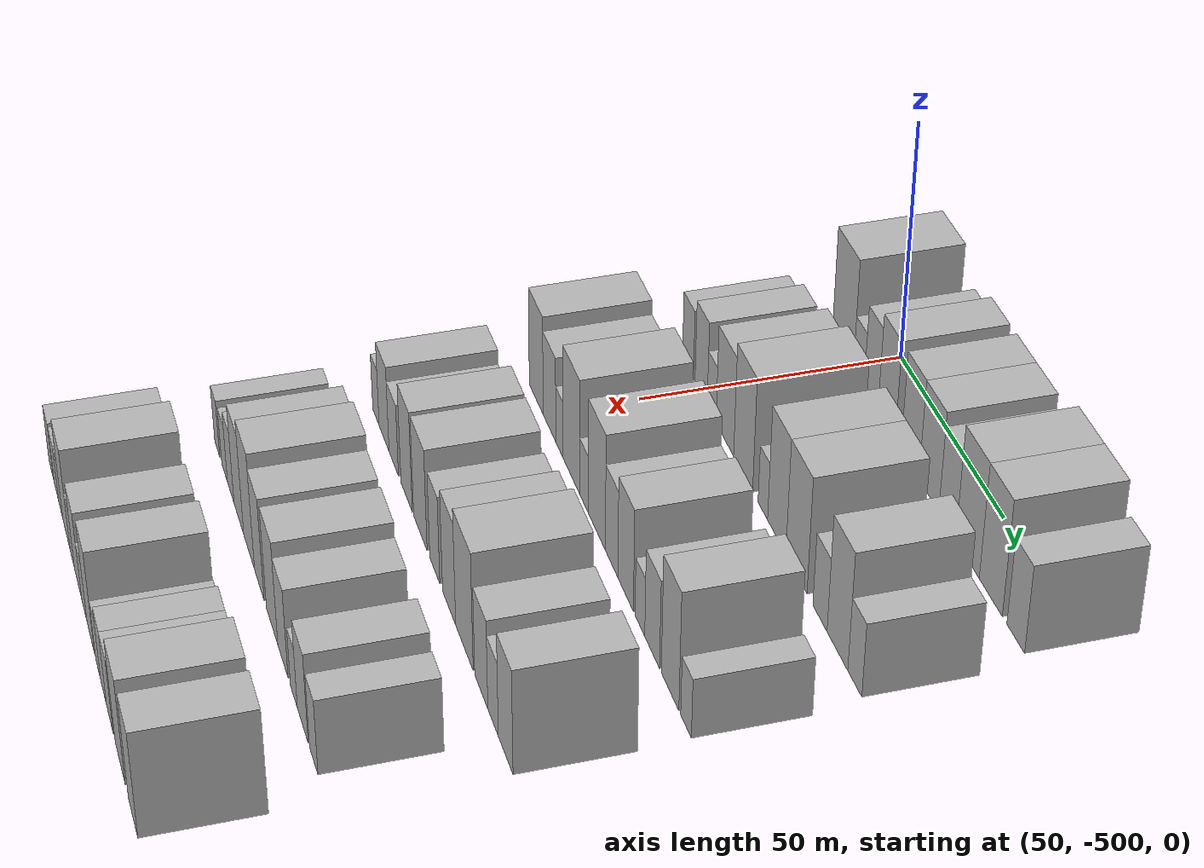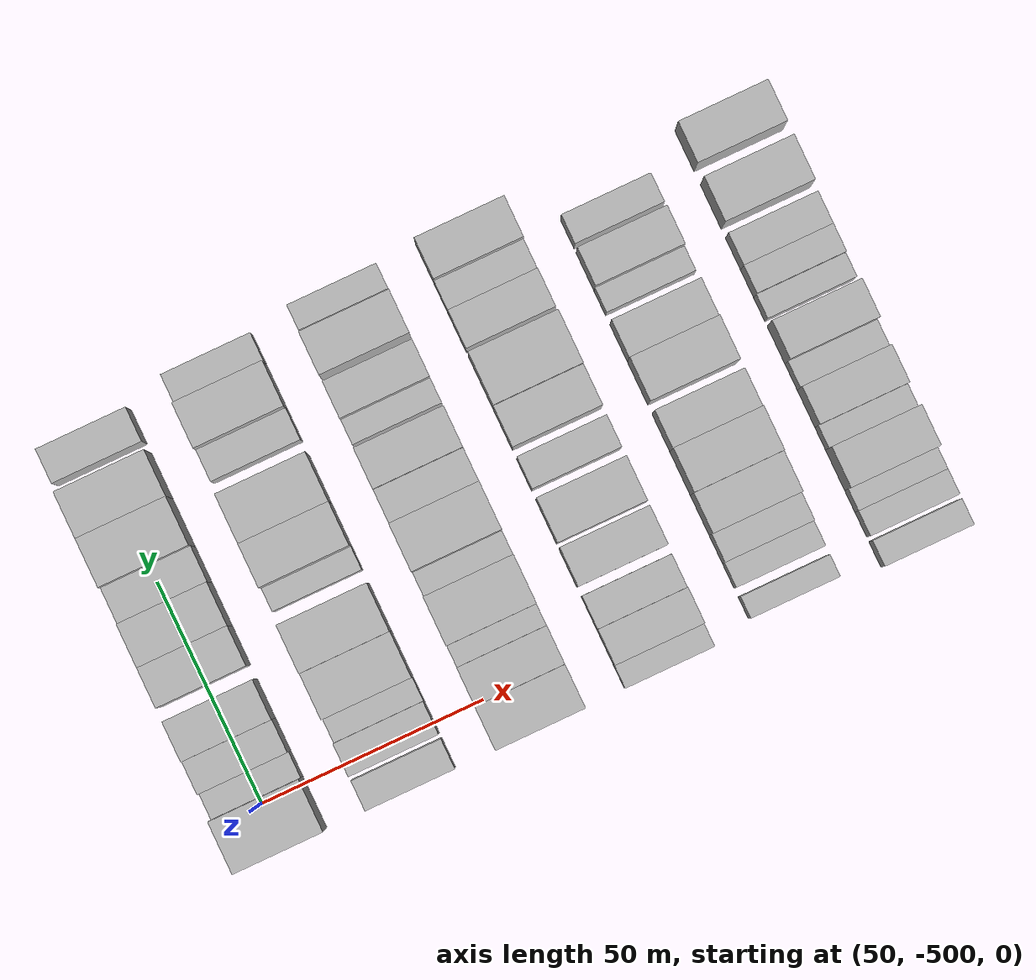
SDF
<sdf version="1.6">
 <world name="default">
  <model name="building_1">
   <static>1</static>
   <pose>50.0000 -504.2040 0 0.000000 0.000000 0.000000</pose>
   <link name="link">
    <pose>0 0 12.00 0 0 0</pose>
    <collision name="collision"><geometry><box><size>20.0000 11.5920 24.0000</size></box></geometry></collision>
    <visual name="visual">
     <cast_shadows>0</cast_shadows>
     <geometry><box><size>20.0000 11.5920 24.0000</size></box></geometry>
     <material>
      <script>
       <uri>model://HANNAS_wall/materials/scripts</uri>
       <uri>model://HANNAS_wall/materials/textures</uri>
       <name>vrc/HANNAS_wall</name>
      </script>
     </material>
    </visual>
   </link>
  </model>
  <model name="building_2">
   <static>1</static>
   <pose>50.0000 -495.5238 0 0.000000 0.000000 0.000000</pose>
   <link name="link">
    <pose>0 0 6.00 0 0 0</pose>
    <collision name="collision"><geometry><box><size>20.0000 5.7683 12.0000</size></box></geometry></collision>
    <visual name="visual">
     <cast_shadows>0</cast_shadows>
     <geometry><box><size>20.0000 5.7683 12.0000</size></box></geometry>
     <material>
      <script>
       <uri>model://HANNAS_wall/materials/scripts</uri>
       <uri>model://HANNAS_wall/materials/textures</uri>
       <name>vrc/HANNAS_wall</name>
      </script>
     </material>
    </visual>
   </link>
  </model>
  <model name="building_3">
   <static>1</static>
   <pose>50.0000 -488.9735 0 0.000000 0.000000 0.000000</pose>
   <link name="link">
    <pose>0 0 9.00 0 0 0</pose>
    <collision name="collision"><geometry><box><size>20.0000 7.3324 18.0000</size></box></geometry></collision>
    <visual name="visual">
     <cast_shadows>0</cast_shadows>
     <geometry><box><size>20.0000 7.3324 18.0000</size></box></geometry>
     <material>
      <script>
       <uri>model://HANNAS_wall/materials/scripts</uri>
       <uri>model://HANNAS_wall/materials/textures</uri>
       <name>vrc/HANNAS_wall</name>
      </script>
     </material>
    </visual>
   </link>
  </model>
  <model name="building_4">
   <static>1</static>
   <pose>50.0000 -480.8503 0 0.000000 0.000000 0.000000</pose>
   <link name="link">
    <pose>0 0 10.50 0 0 0</pose>
    <collision name="collision"><geometry><box><size>20.0000 8.9139 21.0000</size></box></geometry></collision>
    <visual name="visual">
     <cast_shadows>0</cast_shadows>
     <geometry><box><size>20.0000 8.9139 21.0000</size></box></geometry>
     <material>
      <script>
       <uri>model://HANNAS_wall/materials/scripts</uri>
       <uri>model://HANNAS_wall/materials/textures</uri>
       <name>vrc/HANNAS_wall</name>
      </script>
     </material>
    </visual>
   </link>
  </model>
  <model name="building_5">
   <static>1</static>
   <pose>50.0000 -468.9195 0 0.000000 0.000000 0.000000</pose>
   <link name="link">
    <pose>0 0 10.50 0 0 0</pose>
    <collision name="collision"><geometry><box><size>20.0000 8.9476 21.0000</size></box></geometry></collision>
    <visual name="visual">
     <cast_shadows>0</cast_shadows>
     <geometry><box><size>20.0000 8.9476 21.0000</size></box></geometry>
     <material>
      <script>
       <uri>model://HANNAS_wall/materials/scripts</uri>
       <uri>model://HANNAS_wall/materials/textures</uri>
       <name>vrc/HANNAS_wall</name>
      </script>
     </material>
    </visual>
   </link>
  </model>
  <model name="building_6">
   <static>1</static>
   <pose>50.0000 -459.5976 0 0.000000 0.000000 0.000000</pose>
   <link name="link">
    <pose>0 0 10.50 0 0 0</pose>
    <collision name="collision"><geometry><box><size>20.0000 9.6962 21.0000</size></box></geometry></collision>
    <visual name="visual">
     <cast_shadows>0</cast_shadows>
     <geometry><box><size>20.0000 9.6962 21.0000</size></box></geometry>
     <material>
      <script>
       <uri>model://HANNAS_wall/materials/scripts</uri>
       <uri>model://HANNAS_wall/materials/textures</uri>
       <name>vrc/HANNAS_wall</name>
      </script>
     </material>
    </visual>
   </link>
  </model>
  <model name="building_7">
   <static>1</static>
   <pose>50.0000 -450.7209 0 0.000000 0.000000 0.000000</pose>
   <link name="link">
    <pose>0 0 9.00 0 0 0</pose>
    <collision name="collision"><geometry><box><size>20.0000 8.0573 18.0000</size></box></geometry></collision>
    <visual name="visual">
     <cast_shadows>0</cast_shadows>
     <geometry><box><size>20.0000 8.0573 18.0000</size></box></geometry>
     <material>
      <script>
       <uri>model://HANNAS_wall/materials/scripts</uri>
       <uri>model://HANNAS_wall/materials/textures</uri>
       <name>vrc/HANNAS_wall</name>
      </script>
     </material>
    </visual>
   </link>
  </model>
  <model name="building_8">
   <static>1</static>
   <pose>50.0000 -441.2656 0 0.000000 0.000000 0.000000</pose>
   <link name="link">
    <pose>0 0 12.00 0 0 0</pose>
    <collision name="collision"><geometry><box><size>20.0000 10.8533 24.0000</size></box></geometry></collision>
    <visual name="visual">
     <cast_shadows>0</cast_shadows>
     <geometry><box><size>20.0000 10.8533 24.0000</size></box></geometry>
     <material>
      <script>
       <uri>model://HANNAS_wall/materials/scripts</uri>
       <uri>model://HANNAS_wall/materials/textures</uri>
       <name>vrc/HANNAS_wall</name>
      </script>
     </material>
    </visual>
   </link>
  </model>
  <model name="building_9">
   <static>1</static>
   <pose>50.0000 -430.6764 0 0.000000 0.000000 0.000000</pose>
   <link name="link">
    <pose>0 0 12.00 0 0 0</pose>
    <collision name="collision"><geometry><box><size>20.0000 10.3251 24.0000</size></box></geometry></collision>
    <visual name="visual">
     <cast_shadows>0</cast_shadows>
     <geometry><box><size>20.0000 10.3251 24.0000</size></box></geometry>
     <material>
      <script>
       <uri>model://HANNAS_wall/materials/scripts</uri>
       <uri>model://HANNAS_wall/materials/textures</uri>
       <name>vrc/HANNAS_wall</name>
      </script>
     </material>
    </visual>
   </link>
  </model>
  <model name="building_10">
   <static>1</static>
   <pose>50.0000 -419.6778 0 0.000000 0.000000 0.000000</pose>
   <link name="link">
    <pose>0 0 9.00 0 0 0</pose>
    <collision name="collision"><geometry><box><size>20.0000 7.6722 18.0000</size></box></geometry></collision>
    <visual name="visual">
     <cast_shadows>0</cast_shadows>
     <geometry><box><size>20.0000 7.6722 18.0000</size></box></geometry>
     <material>
      <script>
       <uri>model://HANNAS_wall/materials/scripts</uri>
       <uri>model://HANNAS_wall/materials/textures</uri>
       <name>vrc/HANNAS_wall</name>
      </script>
     </material>
    </visual>
   </link>
  </model>
  <model name="building_113">
   <static>1</static>
   <pose>79.0000 -506.6439 0 0.000000 0.000000 0.000000</pose>
   <link name="link">
    <pose>0 0 7.50 0 0 0</pose>
    <collision name="collision"><geometry><box><size>20.0000 6.7122 15.0000</size></box></geometry></collision>
    <visual name="visual">
     <cast_shadows>0</cast_shadows>
     <geometry><box><size>20.0000 6.7122 15.0000</size></box></geometry>
     <material>
      <script>
       <uri>model://HANNAS_wall/materials/scripts</uri>
       <uri>model://HANNAS_wall/materials/textures</uri>
       <name>vrc/HANNAS_wall</name>
      </script>
     </material>
    </visual>
   </link>
  </model>
  <model name="building_114">
   <static>1</static>
   <pose>79.0000 -498.6061 0 0.000000 0.000000 0.000000</pose>
   <link name="link">
    <pose>0 0 9.00 0 0 0</pose>
    <collision name="collision"><geometry><box><size>20.0000 7.3633 18.0000</size></box></geometry></collision>
    <visual name="visual">
     <cast_shadows>0</cast_shadows>
     <geometry><box><size>20.0000 7.3633 18.0000</size></box></geometry>
     <material>
      <script>
       <uri>model://HANNAS_wall/materials/scripts</uri>
       <uri>model://HANNAS_wall/materials/textures</uri>
       <name>vrc/HANNAS_wall</name>
      </script>
     </material>
    </visual>
   </link>
  </model>
  <model name="building_115">
   <static>1</static>
   <pose>79.0000 -492.2765 0 0.000000 0.000000 0.000000</pose>
   <link name="link">
    <pose>0 0 6.00 0 0 0</pose>
    <collision name="collision"><geometry><box><size>20.0000 5.2959 12.0000</size></box></geometry></collision>
    <visual name="visual">
     <cast_shadows>0</cast_shadows>
     <geometry><box><size>20.0000 5.2959 12.0000</size></box></geometry>
     <material>
      <script>
       <uri>model://HANNAS_wall/materials/scripts</uri>
       <uri>model://HANNAS_wall/materials/textures</uri>
       <name>vrc/HANNAS_wall</name>
      </script>
     </material>
    </visual>
   </link>
  </model>
  <model name="building_116">
   <static>1</static>
   <pose>79.0000 -484.5029 0 0.000000 0.000000 0.000000</pose>
   <link name="link">
    <pose>0 0 10.50 0 0 0</pose>
    <collision name="collision"><geometry><box><size>20.0000 10.2514 21.0000</size></box></geometry></collision>
    <visual name="visual">
     <cast_shadows>0</cast_shadows>
     <geometry><box><size>20.0000 10.2514 21.0000</size></box></geometry>
     <material>
      <script>
       <uri>model://HANNAS_wall/materials/scripts</uri>
       <uri>model://HANNAS_wall/materials/textures</uri>
       <name>vrc/HANNAS_wall</name>
      </script>
     </material>
    </visual>
   </link>
  </model>
  <model name="building_117">
   <static>1</static>
   <pose>79.0000 -473.9984 0 0.000000 0.000000 0.000000</pose>
   <link name="link">
    <pose>0 0 12.00 0 0 0</pose>
    <collision name="collision"><geometry><box><size>20.0000 10.7576 24.0000</size></box></geometry></collision>
    <visual name="visual">
     <cast_shadows>0</cast_shadows>
     <geometry><box><size>20.0000 10.7576 24.0000</size></box></geometry>
     <material>
      <script>
       <uri>model://HANNAS_wall/materials/scripts</uri>
       <uri>model://HANNAS_wall/materials/textures</uri>
       <name>vrc/HANNAS_wall</name>
      </script>
     </material>
    </visual>
   </link>
  </model>
  <model name="building_118">
   <static>1</static>
   <pose>79.0000 -463.0004 0 0.000000 0.000000 0.000000</pose>
   <link name="link">
    <pose>0 0 6.00 0 0 0</pose>
    <collision name="collision"><geometry><box><size>20.0000 5.2384 12.0000</size></box></geometry></collision>
    <visual name="visual">
     <cast_shadows>0</cast_shadows>
     <geometry><box><size>20.0000 5.2384 12.0000</size></box></geometry>
     <material>
      <script>
       <uri>model://HANNAS_wall/materials/scripts</uri>
       <uri>model://HANNAS_wall/materials/textures</uri>
       <name>vrc/HANNAS_wall</name>
      </script>
     </material>
    </visual>
   </link>
  </model>
  <model name="building_119">
   <static>1</static>
   <pose>79.0000 -455.4899 0 0.000000 0.000000 0.000000</pose>
   <link name="link">
    <pose>0 0 12.00 0 0 0</pose>
    <collision name="collision"><geometry><box><size>20.0000 9.7826 24.0000</size></box></geometry></collision>
    <visual name="visual">
     <cast_shadows>0</cast_shadows>
     <geometry><box><size>20.0000 9.7826 24.0000</size></box></geometry>
     <material>
      <script>
       <uri>model://HANNAS_wall/materials/scripts</uri>
       <uri>model://HANNAS_wall/materials/textures</uri>
       <name>vrc/HANNAS_wall</name>
      </script>
     </material>
    </visual>
   </link>
  </model>
  <model name="building_120">
   <static>1</static>
   <pose>79.0000 -445.1103 0 0.000000 0.000000 0.000000</pose>
   <link name="link">
    <pose>0 0 12.00 0 0 0</pose>
    <collision name="collision"><geometry><box><size>20.0000 10.9765 24.0000</size></box></geometry></collision>
    <visual name="visual">
     <cast_shadows>0</cast_shadows>
     <geometry><box><size>20.0000 10.9765 24.0000</size></box></geometry>
     <material>
      <script>
       <uri>model://HANNAS_wall/materials/scripts</uri>
       <uri>model://HANNAS_wall/materials/textures</uri>
       <name>vrc/HANNAS_wall</name>
      </script>
     </material>
    </visual>
   </link>
  </model>
  <model name="building_121">
   <static>1</static>
   <pose>79.0000 -433.0777 0 0.000000 0.000000 0.000000</pose>
   <link name="link">
    <pose>0 0 7.50 0 0 0</pose>
    <collision name="collision"><geometry><box><size>20.0000 7.0888 15.0000</size></box></geometry></collision>
    <visual name="visual">
     <cast_shadows>0</cast_shadows>
     <geometry><box><size>20.0000 7.0888 15.0000</size></box></geometry>
     <material>
      <script>
       <uri>model://HANNAS_wall/materials/scripts</uri>
       <uri>model://HANNAS_wall/materials/textures</uri>
       <name>vrc/HANNAS_wall</name>
      </script>
     </material>
    </visual>
   </link>
  </model>
  <model name="building_122">
   <static>1</static>
   <pose>79.0000 -424.4670 0 0.000000 0.000000 0.000000</pose>
   <link name="link">
    <pose>0 0 12.00 0 0 0</pose>
    <collision name="collision"><geometry><box><size>20.0000 10.1327 24.0000</size></box></geometry></collision>
    <visual name="visual">
     <cast_shadows>0</cast_shadows>
     <geometry><box><size>20.0000 10.1327 24.0000</size></box></geometry>
     <material>
      <script>
       <uri>model://HANNAS_wall/materials/scripts</uri>
       <uri>model://HANNAS_wall/materials/textures</uri>
       <name>vrc/HANNAS_wall</name>
      </script>
     </material>
    </visual>
   </link>
  </model>
  <model name="building_123">
   <static>1</static>
   <pose>79.0000 -416.0557 0 0.000000 0.000000 0.000000</pose>
   <link name="link">
    <pose>0 0 7.50 0 0 0</pose>
    <collision name="collision"><geometry><box><size>20.0000 6.6900 15.0000</size></box></geometry></collision>
    <visual name="visual">
     <cast_shadows>0</cast_shadows>
     <geometry><box><size>20.0000 6.6900 15.0000</size></box></geometry>
     <material>
      <script>
       <uri>model://HANNAS_wall/materials/scripts</uri>
       <uri>model://HANNAS_wall/materials/textures</uri>
       <name>vrc/HANNAS_wall</name>
      </script>
     </material>
    </visual>
   </link>
  </model>
  <model name="building_226">
   <static>1</static>
   <pose>108.0000 -505.1451 0 0.000000 0.000000 0.000000</pose>
   <link name="link">
    <pose>0 0 10.50 0 0 0</pose>
    <collision name="collision"><geometry><box><size>20.0000 9.7098 21.0000</size></box></geometry></collision>
    <visual name="visual">
     <cast_shadows>0</cast_shadows>
     <geometry><box><size>20.0000 9.7098 21.0000</size></box></geometry>
     <material>
      <script>
       <uri>model://HANNAS_wall/materials/scripts</uri>
       <uri>model://HANNAS_wall/materials/textures</uri>
       <name>vrc/HANNAS_wall</name>
      </script>
     </material>
    </visual>
   </link>
  </model>
  <model name="building_227">
   <static>1</static>
   <pose>108.0000 -495.9892 0 0.000000 0.000000 0.000000</pose>
   <link name="link">
    <pose>0 0 9.00 0 0 0</pose>
    <collision name="collision"><geometry><box><size>20.0000 8.6020 18.0000</size></box></geometry></collision>
    <visual name="visual">
     <cast_shadows>0</cast_shadows>
     <geometry><box><size>20.0000 8.6020 18.0000</size></box></geometry>
     <material>
      <script>
       <uri>model://HANNAS_wall/materials/scripts</uri>
       <uri>model://HANNAS_wall/materials/textures</uri>
       <name>vrc/HANNAS_wall</name>
      </script>
     </material>
    </visual>
   </link>
  </model>
  <model name="building_228">
   <static>1</static>
   <pose>108.0000 -489.2706 0 0.000000 0.000000 0.000000</pose>
   <link name="link">
    <pose>0 0 6.00 0 0 0</pose>
    <collision name="collision"><geometry><box><size>20.0000 4.8351 12.0000</size></box></geometry></collision>
    <visual name="visual">
     <cast_shadows>0</cast_shadows>
     <geometry><box><size>20.0000 4.8351 12.0000</size></box></geometry>
     <material>
      <script>
       <uri>model://HANNAS_wall/materials/scripts</uri>
       <uri>model://HANNAS_wall/materials/textures</uri>
       <name>vrc/HANNAS_wall</name>
      </script>
     </material>
    </visual>
   </link>
  </model>
  <model name="building_229">
   <static>1</static>
   <pose>108.0000 -481.3991 0 0.000000 0.000000 0.000000</pose>
   <link name="link">
    <pose>0 0 12.00 0 0 0</pose>
    <collision name="collision"><geometry><box><size>20.0000 10.9078 24.0000</size></box></geometry></collision>
    <visual name="visual">
     <cast_shadows>0</cast_shadows>
     <geometry><box><size>20.0000 10.9078 24.0000</size></box></geometry>
     <material>
      <script>
       <uri>model://HANNAS_wall/materials/scripts</uri>
       <uri>model://HANNAS_wall/materials/textures</uri>
       <name>vrc/HANNAS_wall</name>
      </script>
     </material>
    </visual>
   </link>
  </model>
  <model name="building_230">
   <static>1</static>
   <pose>108.0000 -473.2100 0 0.000000 0.000000 0.000000</pose>
   <link name="link">
    <pose>0 0 6.00 0 0 0</pose>
    <collision name="collision"><geometry><box><size>20.0000 5.4704 12.0000</size></box></geometry></collision>
    <visual name="visual">
     <cast_shadows>0</cast_shadows>
     <geometry><box><size>20.0000 5.4704 12.0000</size></box></geometry>
     <material>
      <script>
       <uri>model://HANNAS_wall/materials/scripts</uri>
       <uri>model://HANNAS_wall/materials/textures</uri>
       <name>vrc/HANNAS_wall</name>
      </script>
     </material>
    </visual>
   </link>
  </model>
  <model name="building_231">
   <static>1</static>
   <pose>108.0000 -465.1127 0 0.000000 0.000000 0.000000</pose>
   <link name="link">
    <pose>0 0 12.00 0 0 0</pose>
    <collision name="collision"><geometry><box><size>20.0000 10.7243 24.0000</size></box></geometry></collision>
    <visual name="visual">
     <cast_shadows>0</cast_shadows>
     <geometry><box><size>20.0000 10.7243 24.0000</size></box></geometry>
     <material>
      <script>
       <uri>model://HANNAS_wall/materials/scripts</uri>
       <uri>model://HANNAS_wall/materials/textures</uri>
       <name>vrc/HANNAS_wall</name>
      </script>
     </material>
    </visual>
   </link>
  </model>
  <model name="building_232">
   <static>1</static>
   <pose>108.0000 -455.9455 0 0.000000 0.000000 0.000000</pose>
   <link name="link">
    <pose>0 0 9.00 0 0 0</pose>
    <collision name="collision"><geometry><box><size>20.0000 7.6100 18.0000</size></box></geometry></collision>
    <visual name="visual">
     <cast_shadows>0</cast_shadows>
     <geometry><box><size>20.0000 7.6100 18.0000</size></box></geometry>
     <material>
      <script>
       <uri>model://HANNAS_wall/materials/scripts</uri>
       <uri>model://HANNAS_wall/materials/textures</uri>
       <name>vrc/HANNAS_wall</name>
      </script>
     </material>
    </visual>
   </link>
  </model>
  <model name="building_233">
   <static>1</static>
   <pose>108.0000 -447.5242 0 0.000000 0.000000 0.000000</pose>
   <link name="link">
    <pose>0 0 10.50 0 0 0</pose>
    <collision name="collision"><geometry><box><size>20.0000 9.2328 21.0000</size></box></geometry></collision>
    <visual name="visual">
     <cast_shadows>0</cast_shadows>
     <geometry><box><size>20.0000 9.2328 21.0000</size></box></geometry>
     <material>
      <script>
       <uri>model://HANNAS_wall/materials/scripts</uri>
       <uri>model://HANNAS_wall/materials/textures</uri>
       <name>vrc/HANNAS_wall</name>
      </script>
     </material>
    </visual>
   </link>
  </model>
  <model name="building_234">
   <static>1</static>
   <pose>108.0000 -439.1036 0 0.000000 0.000000 0.000000</pose>
   <link name="link">
    <pose>0 0 6.00 0 0 0</pose>
    <collision name="collision"><geometry><box><size>20.0000 5.6084 12.0000</size></box></geometry></collision>
    <visual name="visual">
     <cast_shadows>0</cast_shadows>
     <geometry><box><size>20.0000 5.6084 12.0000</size></box></geometry>
     <material>
      <script>
       <uri>model://HANNAS_wall/materials/scripts</uri>
       <uri>model://HANNAS_wall/materials/textures</uri>
       <name>vrc/HANNAS_wall</name>
      </script>
     </material>
    </visual>
   </link>
  </model>
  <model name="building_235">
   <static>1</static>
   <pose>108.0000 -432.1223 0 0.000000 0.000000 0.000000</pose>
   <link name="link">
    <pose>0 0 9.00 0 0 0</pose>
    <collision name="collision"><geometry><box><size>20.0000 8.3540 18.0000</size></box></geometry></collision>
    <visual name="visual">
     <cast_shadows>0</cast_shadows>
     <geometry><box><size>20.0000 8.3540 18.0000</size></box></geometry>
     <material>
      <script>
       <uri>model://HANNAS_wall/materials/scripts</uri>
       <uri>model://HANNAS_wall/materials/textures</uri>
       <name>vrc/HANNAS_wall</name>
      </script>
     </material>
    </visual>
   </link>
  </model>
  <model name="building_236">
   <static>1</static>
   <pose>108.0000 -422.1248 0 0.000000 0.000000 0.000000</pose>
   <link name="link">
    <pose>0 0 12.00 0 0 0</pose>
    <collision name="collision"><geometry><box><size>20.0000 9.6410 24.0000</size></box></geometry></collision>
    <visual name="visual">
     <cast_shadows>0</cast_shadows>
     <geometry><box><size>20.0000 9.6410 24.0000</size></box></geometry>
     <material>
      <script>
       <uri>model://HANNAS_wall/materials/scripts</uri>
       <uri>model://HANNAS_wall/materials/textures</uri>
       <name>vrc/HANNAS_wall</name>
      </script>
     </material>
    </visual>
   </link>
  </model>
  <model name="building_237">
   <static>1</static>
   <pose>108.0000 -413.4502 0 0.000000 0.000000 0.000000</pose>
   <link name="link">
    <pose>0 0 6.00 0 0 0</pose>
    <collision name="collision"><geometry><box><size>20.0000 5.7081 12.0000</size></box></geometry></collision>
    <visual name="visual">
     <cast_shadows>0</cast_shadows>
     <geometry><box><size>20.0000 5.7081 12.0000</size></box></geometry>
     <material>
      <script>
       <uri>model://HANNAS_wall/materials/scripts</uri>
       <uri>model://HANNAS_wall/materials/textures</uri>
       <name>vrc/HANNAS_wall</name>
      </script>
     </material>
    </visual>
   </link>
  </model>
  <model name="building_334">
   <static>1</static>
   <pose>137.0000 -507.4073 0 0.000000 0.000000 0.000000</pose>
   <link name="link">
    <pose>0 0 6.00 0 0 0</pose>
    <collision name="collision"><geometry><box><size>20.0000 5.1854 12.0000</size></box></geometry></collision>
    <visual name="visual">
     <cast_shadows>0</cast_shadows>
     <geometry><box><size>20.0000 5.1854 12.0000</size></box></geometry>
     <material>
      <script>
       <uri>model://HANNAS_wall/materials/scripts</uri>
       <uri>model://HANNAS_wall/materials/textures</uri>
       <name>vrc/HANNAS_wall</name>
      </script>
     </material>
    </visual>
   </link>
  </model>
  <model name="building_335">
   <static>1</static>
   <pose>137.0000 -500.8040 0 0.000000 0.000000 0.000000</pose>
   <link name="link">
    <pose>0 0 9.00 0 0 0</pose>
    <collision name="collision"><geometry><box><size>20.0000 8.0212 18.0000</size></box></geometry></collision>
    <visual name="visual">
     <cast_shadows>0</cast_shadows>
     <geometry><box><size>20.0000 8.0212 18.0000</size></box></geometry>
     <material>
      <script>
       <uri>model://HANNAS_wall/materials/scripts</uri>
       <uri>model://HANNAS_wall/materials/textures</uri>
       <name>vrc/HANNAS_wall</name>
      </script>
     </material>
    </visual>
   </link>
  </model>
  <model name="building_336">
   <static>1</static>
   <pose>137.0000 -493.0777 0 0.000000 0.000000 0.000000</pose>
   <link name="link">
    <pose>0 0 7.50 0 0 0</pose>
    <collision name="collision"><geometry><box><size>20.0000 7.4316 15.0000</size></box></geometry></collision>
    <visual name="visual">
     <cast_shadows>0</cast_shadows>
     <geometry><box><size>20.0000 7.4316 15.0000</size></box></geometry>
     <material>
      <script>
       <uri>model://HANNAS_wall/materials/scripts</uri>
       <uri>model://HANNAS_wall/materials/textures</uri>
       <name>vrc/HANNAS_wall</name>
      </script>
     </material>
    </visual>
   </link>
  </model>
  <model name="building_337">
   <static>1</static>
   <pose>137.0000 -482.9922 0 0.000000 0.000000 0.000000</pose>
   <link name="link">
    <pose>0 0 10.50 0 0 0</pose>
    <collision name="collision"><geometry><box><size>20.0000 8.7392 21.0000</size></box></geometry></collision>
    <visual name="visual">
     <cast_shadows>0</cast_shadows>
     <geometry><box><size>20.0000 8.7392 21.0000</size></box></geometry>
     <material>
      <script>
       <uri>model://HANNAS_wall/materials/scripts</uri>
       <uri>model://HANNAS_wall/materials/textures</uri>
       <name>vrc/HANNAS_wall</name>
      </script>
     </material>
    </visual>
   </link>
  </model>
  <model name="building_338">
   <static>1</static>
   <pose>137.0000 -472.6237 0 0.000000 0.000000 0.000000</pose>
   <link name="link">
    <pose>0 0 10.50 0 0 0</pose>
    <collision name="collision"><geometry><box><size>20.0000 9.9978 21.0000</size></box></geometry></collision>
    <visual name="visual">
     <cast_shadows>0</cast_shadows>
     <geometry><box><size>20.0000 9.9978 21.0000</size></box></geometry>
     <material>
      <script>
       <uri>model://HANNAS_wall/materials/scripts</uri>
       <uri>model://HANNAS_wall/materials/textures</uri>
       <name>vrc/HANNAS_wall</name>
      </script>
     </material>
    </visual>
   </link>
  </model>
  <model name="building_339">
   <static>1</static>
   <pose>137.0000 -462.0170 0 0.000000 0.000000 0.000000</pose>
   <link name="link">
    <pose>0 0 9.00 0 0 0</pose>
    <collision name="collision"><geometry><box><size>20.0000 7.2156 18.0000</size></box></geometry></collision>
    <visual name="visual">
     <cast_shadows>0</cast_shadows>
     <geometry><box><size>20.0000 7.2156 18.0000</size></box></geometry>
     <material>
      <script>
       <uri>model://HANNAS_wall/materials/scripts</uri>
       <uri>model://HANNAS_wall/materials/textures</uri>
       <name>vrc/HANNAS_wall</name>
      </script>
     </material>
    </visual>
   </link>
  </model>
  <model name="building_340">
   <static>1</static>
   <pose>137.0000 -451.8242 0 0.000000 0.000000 0.000000</pose>
   <link name="link">
    <pose>0 0 10.50 0 0 0</pose>
    <collision name="collision"><geometry><box><size>20.0000 9.1700 21.0000</size></box></geometry></collision>
    <visual name="visual">
     <cast_shadows>0</cast_shadows>
     <geometry><box><size>20.0000 9.1700 21.0000</size></box></geometry>
     <material>
      <script>
       <uri>model://HANNAS_wall/materials/scripts</uri>
       <uri>model://HANNAS_wall/materials/textures</uri>
       <name>vrc/HANNAS_wall</name>
      </script>
     </material>
    </visual>
   </link>
  </model>
  <model name="building_341">
   <static>1</static>
   <pose>137.0000 -441.2918 0 0.000000 0.000000 0.000000</pose>
   <link name="link">
    <pose>0 0 12.00 0 0 0</pose>
    <collision name="collision"><geometry><box><size>20.0000 11.8948 24.0000</size></box></geometry></collision>
    <visual name="visual">
     <cast_shadows>0</cast_shadows>
     <geometry><box><size>20.0000 11.8948 24.0000</size></box></geometry>
     <material>
      <script>
       <uri>model://HANNAS_wall/materials/scripts</uri>
       <uri>model://HANNAS_wall/materials/textures</uri>
       <name>vrc/HANNAS_wall</name>
      </script>
     </material>
    </visual>
   </link>
  </model>
  <model name="building_342">
   <static>1</static>
   <pose>137.0000 -430.0489 0 0.000000 0.000000 0.000000</pose>
   <link name="link">
    <pose>0 0 9.00 0 0 0</pose>
    <collision name="collision"><geometry><box><size>20.0000 8.5910 18.0000</size></box></geometry></collision>
    <visual name="visual">
     <cast_shadows>0</cast_shadows>
     <geometry><box><size>20.0000 8.5910 18.0000</size></box></geometry>
     <material>
      <script>
       <uri>model://HANNAS_wall/materials/scripts</uri>
       <uri>model://HANNAS_wall/materials/textures</uri>
       <name>vrc/HANNAS_wall</name>
      </script>
     </material>
    </visual>
   </link>
  </model>
  <model name="building_343">
   <static>1</static>
   <pose>137.0000 -422.3955 0 0.000000 0.000000 0.000000</pose>
   <link name="link">
    <pose>0 0 7.50 0 0 0</pose>
    <collision name="collision"><geometry><box><size>20.0000 6.7159 15.0000</size></box></geometry></collision>
    <visual name="visual">
     <cast_shadows>0</cast_shadows>
     <geometry><box><size>20.0000 6.7159 15.0000</size></box></geometry>
     <material>
      <script>
       <uri>model://HANNAS_wall/materials/scripts</uri>
       <uri>model://HANNAS_wall/materials/textures</uri>
       <name>vrc/HANNAS_wall</name>
      </script>
     </material>
    </visual>
   </link>
  </model>
  <model name="building_344">
   <static>1</static>
   <pose>137.0000 -414.4514 0 0.000000 0.000000 0.000000</pose>
   <link name="link">
    <pose>0 0 10.50 0 0 0</pose>
    <collision name="collision"><geometry><box><size>20.0000 9.1722 21.0000</size></box></geometry></collision>
    <visual name="visual">
     <cast_shadows>0</cast_shadows>
     <geometry><box><size>20.0000 9.1722 21.0000</size></box></geometry>
     <material>
      <script>
       <uri>model://HANNAS_wall/materials/scripts</uri>
       <uri>model://HANNAS_wall/materials/textures</uri>
       <name>vrc/HANNAS_wall</name>
      </script>
     </material>
    </visual>
   </link>
  </model>
  <model name="building_451">
   <static>1</static>
   <pose>166.0000 -505.5519 0 0.000000 0.000000 0.000000</pose>
   <link name="link">
    <pose>0 0 6.00 0 0 0</pose>
    <collision name="collision"><geometry><box><size>20.0000 4.8962 12.0000</size></box></geometry></collision>
    <visual name="visual">
     <cast_shadows>0</cast_shadows>
     <geometry><box><size>20.0000 4.8962 12.0000</size></box></geometry>
     <material>
      <script>
       <uri>model://HANNAS_wall/materials/scripts</uri>
       <uri>model://HANNAS_wall/materials/textures</uri>
       <name>vrc/HANNAS_wall</name>
      </script>
     </material>
    </visual>
   </link>
  </model>
  <model name="building_452">
   <static>1</static>
   <pose>166.0000 -498.3011 0 0.000000 0.000000 0.000000</pose>
   <link name="link">
    <pose>0 0 6.00 0 0 0</pose>
    <collision name="collision"><geometry><box><size>20.0000 5.6054 12.0000</size></box></geometry></collision>
    <visual name="visual">
     <cast_shadows>0</cast_shadows>
     <geometry><box><size>20.0000 5.6054 12.0000</size></box></geometry>
     <material>
      <script>
       <uri>model://HANNAS_wall/materials/scripts</uri>
       <uri>model://HANNAS_wall/materials/textures</uri>
       <name>vrc/HANNAS_wall</name>
      </script>
     </material>
    </visual>
   </link>
  </model>
  <model name="building_453">
   <static>1</static>
   <pose>166.0000 -492.3573 0 0.000000 0.000000 0.000000</pose>
   <link name="link">
    <pose>0 0 7.50 0 0 0</pose>
    <collision name="collision"><geometry><box><size>20.0000 6.2822 15.0000</size></box></geometry></collision>
    <visual name="visual">
     <cast_shadows>0</cast_shadows>
     <geometry><box><size>20.0000 6.2822 15.0000</size></box></geometry>
     <material>
      <script>
       <uri>model://HANNAS_wall/materials/scripts</uri>
       <uri>model://HANNAS_wall/materials/textures</uri>
       <name>vrc/HANNAS_wall</name>
      </script>
     </material>
    </visual>
   </link>
  </model>
  <model name="building_454">
   <static>1</static>
   <pose>166.0000 -484.6898 0 0.000000 0.000000 0.000000</pose>
   <link name="link">
    <pose>0 0 10.50 0 0 0</pose>
    <collision name="collision"><geometry><box><size>20.0000 9.0528 21.0000</size></box></geometry></collision>
    <visual name="visual">
     <cast_shadows>0</cast_shadows>
     <geometry><box><size>20.0000 9.0528 21.0000</size></box></geometry>
     <material>
      <script>
       <uri>model://HANNAS_wall/materials/scripts</uri>
       <uri>model://HANNAS_wall/materials/textures</uri>
       <name>vrc/HANNAS_wall</name>
      </script>
     </material>
    </visual>
   </link>
  </model>
  <model name="building_455">
   <static>1</static>
   <pose>166.0000 -475.2321 0 0.000000 0.000000 0.000000</pose>
   <link name="link">
    <pose>0 0 12.00 0 0 0</pose>
    <collision name="collision"><geometry><box><size>20.0000 9.8626 24.0000</size></box></geometry></collision>
    <visual name="visual">
     <cast_shadows>0</cast_shadows>
     <geometry><box><size>20.0000 9.8626 24.0000</size></box></geometry>
     <material>
      <script>
       <uri>model://HANNAS_wall/materials/scripts</uri>
       <uri>model://HANNAS_wall/materials/textures</uri>
       <name>vrc/HANNAS_wall</name>
      </script>
     </material>
    </visual>
   </link>
  </model>
  <model name="building_456">
   <static>1</static>
   <pose>166.0000 -466.0459 0 0.000000 0.000000 0.000000</pose>
   <link name="link">
    <pose>0 0 10.50 0 0 0</pose>
    <collision name="collision"><geometry><box><size>20.0000 8.5098 21.0000</size></box></geometry></collision>
    <visual name="visual">
     <cast_shadows>0</cast_shadows>
     <geometry><box><size>20.0000 8.5098 21.0000</size></box></geometry>
     <material>
      <script>
       <uri>model://HANNAS_wall/materials/scripts</uri>
       <uri>model://HANNAS_wall/materials/textures</uri>
       <name>vrc/HANNAS_wall</name>
      </script>
     </material>
    </visual>
   </link>
  </model>
  <model name="building_457">
   <static>1</static>
   <pose>166.0000 -454.9054 0 0.000000 0.000000 0.000000</pose>
   <link name="link">
    <pose>0 0 10.50 0 0 0</pose>
    <collision name="collision"><geometry><box><size>20.0000 9.7712 21.0000</size></box></geometry></collision>
    <visual name="visual">
     <cast_shadows>0</cast_shadows>
     <geometry><box><size>20.0000 9.7712 21.0000</size></box></geometry>
     <material>
      <script>
       <uri>model://HANNAS_wall/materials/scripts</uri>
       <uri>model://HANNAS_wall/materials/textures</uri>
       <name>vrc/HANNAS_wall</name>
      </script>
     </material>
    </visual>
   </link>
  </model>
  <model name="building_458">
   <static>1</static>
   <pose>166.0000 -445.7742 0 0.000000 0.000000 0.000000</pose>
   <link name="link">
    <pose>0 0 9.00 0 0 0</pose>
    <collision name="collision"><geometry><box><size>20.0000 8.4912 18.0000</size></box></geometry></collision>
    <visual name="visual">
     <cast_shadows>0</cast_shadows>
     <geometry><box><size>20.0000 8.4912 18.0000</size></box></geometry>
     <material>
      <script>
       <uri>model://HANNAS_wall/materials/scripts</uri>
       <uri>model://HANNAS_wall/materials/textures</uri>
       <name>vrc/HANNAS_wall</name>
      </script>
     </material>
    </visual>
   </link>
  </model>
  <model name="building_459">
   <static>1</static>
   <pose>166.0000 -436.7569 0 0.000000 0.000000 0.000000</pose>
   <link name="link">
    <pose>0 0 6.00 0 0 0</pose>
    <collision name="collision"><geometry><box><size>20.0000 5.5433 12.0000</size></box></geometry></collision>
    <visual name="visual">
     <cast_shadows>0</cast_shadows>
     <geometry><box><size>20.0000 5.5433 12.0000</size></box></geometry>
     <material>
      <script>
       <uri>model://HANNAS_wall/materials/scripts</uri>
       <uri>model://HANNAS_wall/materials/textures</uri>
       <name>vrc/HANNAS_wall</name>
      </script>
     </material>
    </visual>
   </link>
  </model>
  <model name="building_460">
   <static>1</static>
   <pose>166.0000 -429.6787 0 0.000000 0.000000 0.000000</pose>
   <link name="link">
    <pose>0 0 9.00 0 0 0</pose>
    <collision name="collision"><geometry><box><size>20.0000 8.6130 18.0000</size></box></geometry></collision>
    <visual name="visual">
     <cast_shadows>0</cast_shadows>
     <geometry><box><size>20.0000 8.6130 18.0000</size></box></geometry>
     <material>
      <script>
       <uri>model://HANNAS_wall/materials/scripts</uri>
       <uri>model://HANNAS_wall/materials/textures</uri>
       <name>vrc/HANNAS_wall</name>
      </script>
     </material>
    </visual>
   </link>
  </model>
  <model name="building_461">
   <static>1</static>
   <pose>166.0000 -421.1183 0 0.000000 0.000000 0.000000</pose>
   <link name="link">
    <pose>0 0 7.50 0 0 0</pose>
    <collision name="collision"><geometry><box><size>20.0000 6.5080 15.0000</size></box></geometry></collision>
    <visual name="visual">
     <cast_shadows>0</cast_shadows>
     <geometry><box><size>20.0000 6.5080 15.0000</size></box></geometry>
     <material>
      <script>
       <uri>model://HANNAS_wall/materials/scripts</uri>
       <uri>model://HANNAS_wall/materials/textures</uri>
       <name>vrc/HANNAS_wall</name>
      </script>
     </material>
    </visual>
   </link>
  </model>
  <model name="building_568">
   <static>1</static>
   <pose>195.0000 -507.1116 0 0.000000 0.000000 0.000000</pose>
   <link name="link">
    <pose>0 0 6.00 0 0 0</pose>
    <collision name="collision"><geometry><box><size>20.0000 5.7768 12.0000</size></box></geometry></collision>
    <visual name="visual">
     <cast_shadows>0</cast_shadows>
     <geometry><box><size>20.0000 5.7768 12.0000</size></box></geometry>
     <material>
      <script>
       <uri>model://HANNAS_wall/materials/scripts</uri>
       <uri>model://HANNAS_wall/materials/textures</uri>
       <name>vrc/HANNAS_wall</name>
      </script>
     </material>
    </visual>
   </link>
  </model>
  <model name="building_569">
   <static>1</static>
   <pose>195.0000 -500.3856 0 0.000000 0.000000 0.000000</pose>
   <link name="link">
    <pose>0 0 6.00 0 0 0</pose>
    <collision name="collision"><geometry><box><size>20.0000 5.6752 12.0000</size></box></geometry></collision>
    <visual name="visual">
     <cast_shadows>0</cast_shadows>
     <geometry><box><size>20.0000 5.6752 12.0000</size></box></geometry>
     <material>
      <script>
       <uri>model://HANNAS_wall/materials/scripts</uri>
       <uri>model://HANNAS_wall/materials/textures</uri>
       <name>vrc/HANNAS_wall</name>
      </script>
     </material>
    </visual>
   </link>
  </model>
  <model name="building_570">
   <static>1</static>
   <pose>195.0000 -495.1060 0 0.000000 0.000000 0.000000</pose>
   <link name="link">
    <pose>0 0 6.00 0 0 0</pose>
    <collision name="collision"><geometry><box><size>20.0000 4.8840 12.0000</size></box></geometry></collision>
    <visual name="visual">
     <cast_shadows>0</cast_shadows>
     <geometry><box><size>20.0000 4.8840 12.0000</size></box></geometry>
     <material>
      <script>
       <uri>model://HANNAS_wall/materials/scripts</uri>
       <uri>model://HANNAS_wall/materials/textures</uri>
       <name>vrc/HANNAS_wall</name>
      </script>
     </material>
    </visual>
   </link>
  </model>
  <model name="building_571">
   <static>1</static>
   <pose>195.0000 -488.0992 0 0.000000 0.000000 0.000000</pose>
   <link name="link">
    <pose>0 0 10.50 0 0 0</pose>
    <collision name="collision"><geometry><box><size>20.0000 9.1297 21.0000</size></box></geometry></collision>
    <visual name="visual">
     <cast_shadows>0</cast_shadows>
     <geometry><box><size>20.0000 9.1297 21.0000</size></box></geometry>
     <material>
      <script>
       <uri>model://HANNAS_wall/materials/scripts</uri>
       <uri>model://HANNAS_wall/materials/textures</uri>
       <name>vrc/HANNAS_wall</name>
      </script>
     </material>
    </visual>
   </link>
  </model>
  <model name="building_572">
   <static>1</static>
   <pose>195.0000 -481.0066 0 0.000000 0.000000 0.000000</pose>
   <link name="link">
    <pose>0 0 6.00 0 0 0</pose>
    <collision name="collision"><geometry><box><size>20.0000 5.0554 12.0000</size></box></geometry></collision>
    <visual name="visual">
     <cast_shadows>0</cast_shadows>
     <geometry><box><size>20.0000 5.0554 12.0000</size></box></geometry>
     <material>
      <script>
       <uri>model://HANNAS_wall/materials/scripts</uri>
       <uri>model://HANNAS_wall/materials/textures</uri>
       <name>vrc/HANNAS_wall</name>
      </script>
     </material>
    </visual>
   </link>
  </model>
  <model name="building_573">
   <static>1</static>
   <pose>195.0000 -474.2386 0 0.000000 0.000000 0.000000</pose>
   <link name="link">
    <pose>0 0 9.00 0 0 0</pose>
    <collision name="collision"><geometry><box><size>20.0000 8.4807 18.0000</size></box></geometry></collision>
    <visual name="visual">
     <cast_shadows>0</cast_shadows>
     <geometry><box><size>20.0000 8.4807 18.0000</size></box></geometry>
     <material>
      <script>
       <uri>model://HANNAS_wall/materials/scripts</uri>
       <uri>model://HANNAS_wall/materials/textures</uri>
       <name>vrc/HANNAS_wall</name>
      </script>
     </material>
    </visual>
   </link>
  </model>
  <model name="building_574">
   <static>1</static>
   <pose>195.0000 -467.0401 0 0.000000 0.000000 0.000000</pose>
   <link name="link">
    <pose>0 0 6.00 0 0 0</pose>
    <collision name="collision"><geometry><box><size>20.0000 5.9162 12.0000</size></box></geometry></collision>
    <visual name="visual">
     <cast_shadows>0</cast_shadows>
     <geometry><box><size>20.0000 5.9162 12.0000</size></box></geometry>
     <material>
      <script>
       <uri>model://HANNAS_wall/materials/scripts</uri>
       <uri>model://HANNAS_wall/materials/textures</uri>
       <name>vrc/HANNAS_wall</name>
      </script>
     </material>
    </visual>
   </link>
  </model>
  <model name="building_575">
   <static>1</static>
   <pose>195.0000 -459.7959 0 0.000000 0.000000 0.000000</pose>
   <link name="link">
    <pose>0 0 10.50 0 0 0</pose>
    <collision name="collision"><geometry><box><size>20.0000 8.5722 21.0000</size></box></geometry></collision>
    <visual name="visual">
     <cast_shadows>0</cast_shadows>
     <geometry><box><size>20.0000 8.5722 21.0000</size></box></geometry>
     <material>
      <script>
       <uri>model://HANNAS_wall/materials/scripts</uri>
       <uri>model://HANNAS_wall/materials/textures</uri>
       <name>vrc/HANNAS_wall</name>
      </script>
     </material>
    </visual>
   </link>
  </model>
  <model name="building_576">
   <static>1</static>
   <pose>195.0000 -451.8024 0 0.000000 0.000000 0.000000</pose>
   <link name="link">
    <pose>0 0 6.00 0 0 0</pose>
    <collision name="collision"><geometry><box><size>20.0000 5.4148 12.0000</size></box></geometry></collision>
    <visual name="visual">
     <cast_shadows>0</cast_shadows>
     <geometry><box><size>20.0000 5.4148 12.0000</size></box></geometry>
     <material>
      <script>
       <uri>model://HANNAS_wall/materials/scripts</uri>
       <uri>model://HANNAS_wall/materials/textures</uri>
       <name>vrc/HANNAS_wall</name>
      </script>
     </material>
    </visual>
   </link>
  </model>
  <model name="building_577">
   <static>1</static>
   <pose>195.0000 -445.9520 0 0.000000 0.000000 0.000000</pose>
   <link name="link">
    <pose>0 0 7.50 0 0 0</pose>
    <collision name="collision"><geometry><box><size>20.0000 6.2859 15.0000</size></box></geometry></collision>
    <visual name="visual">
     <cast_shadows>0</cast_shadows>
     <geometry><box><size>20.0000 6.2859 15.0000</size></box></geometry>
     <material>
      <script>
       <uri>model://HANNAS_wall/materials/scripts</uri>
       <uri>model://HANNAS_wall/materials/textures</uri>
       <name>vrc/HANNAS_wall</name>
      </script>
     </material>
    </visual>
   </link>
  </model>
  <model name="building_578">
   <static>1</static>
   <pose>195.0000 -439.1802 0 0.000000 0.000000 0.000000</pose>
   <link name="link">
    <pose>0 0 7.50 0 0 0</pose>
    <collision name="collision"><geometry><box><size>20.0000 7.2577 15.0000</size></box></geometry></collision>
    <visual name="visual">
     <cast_shadows>0</cast_shadows>
     <geometry><box><size>20.0000 7.2577 15.0000</size></box></geometry>
     <material>
      <script>
       <uri>model://HANNAS_wall/materials/scripts</uri>
       <uri>model://HANNAS_wall/materials/textures</uri>
       <name>vrc/HANNAS_wall</name>
      </script>
     </material>
    </visual>
   </link>
  </model>
  <model name="building_579">
   <static>1</static>
   <pose>195.0000 -428.5139 0 0.000000 0.000000 0.000000</pose>
   <link name="link">
    <pose>0 0 10.50 0 0 0</pose>
    <collision name="collision"><geometry><box><size>20.0000 10.0749 21.0000</size></box></geometry></collision>
    <visual name="visual">
     <cast_shadows>0</cast_shadows>
     <geometry><box><size>20.0000 10.0749 21.0000</size></box></geometry>
     <material>
      <script>
       <uri>model://HANNAS_wall/materials/scripts</uri>
       <uri>model://HANNAS_wall/materials/textures</uri>
       <name>vrc/HANNAS_wall</name>
      </script>
     </material>
    </visual>
   </link>
  </model>
  <model name="building_580">
   <static>1</static>
   <pose>195.0000 -415.8634 0 0.000000 0.000000 0.000000</pose>
   <link name="link">
    <pose>0 0 10.50 0 0 0</pose>
    <collision name="collision"><geometry><box><size>20.0000 9.2261 21.0000</size></box></geometry></collision>
    <visual name="visual">
     <cast_shadows>0</cast_shadows>
     <geometry><box><size>20.0000 9.2261 21.0000</size></box></geometry>
     <material>
      <script>
       <uri>model://HANNAS_wall/materials/scripts</uri>
       <uri>model://HANNAS_wall/materials/textures</uri>
       <name>vrc/HANNAS_wall</name>
      </script>
     </material>
    </visual>
   </link>
  </model>
 </world>
</sdf>
